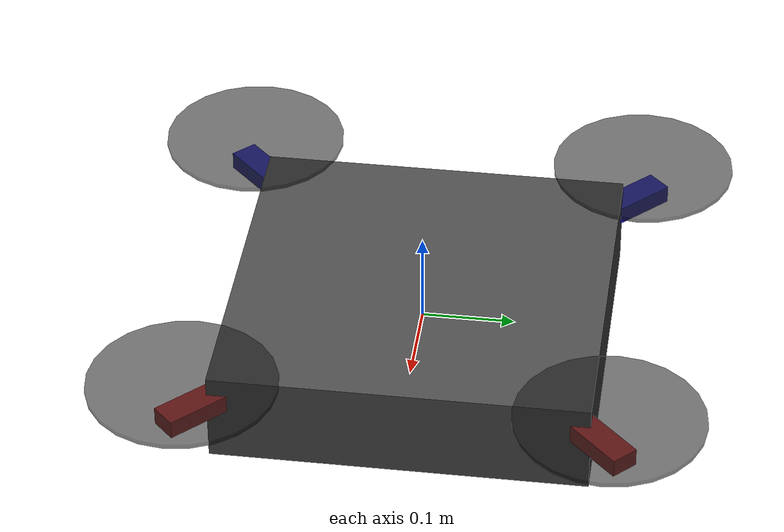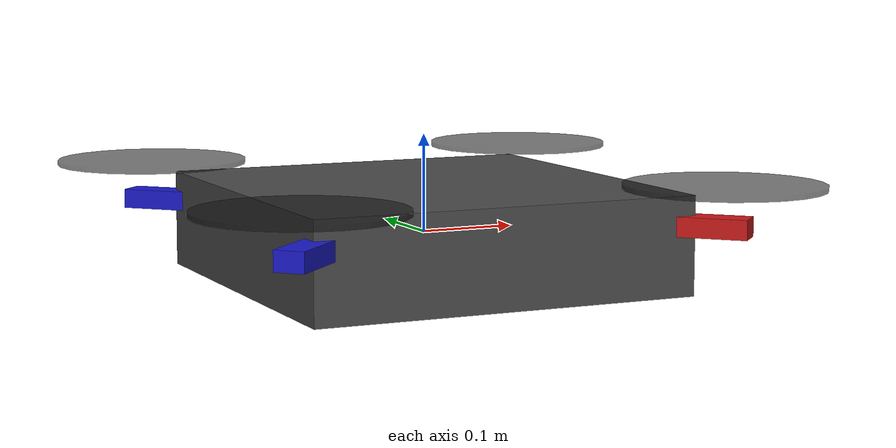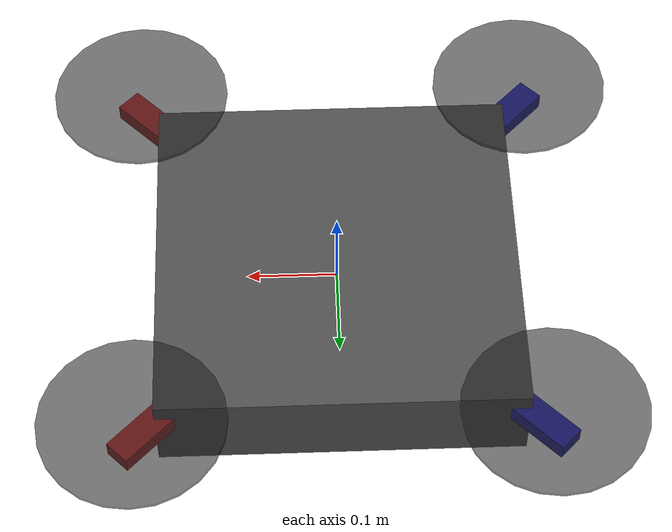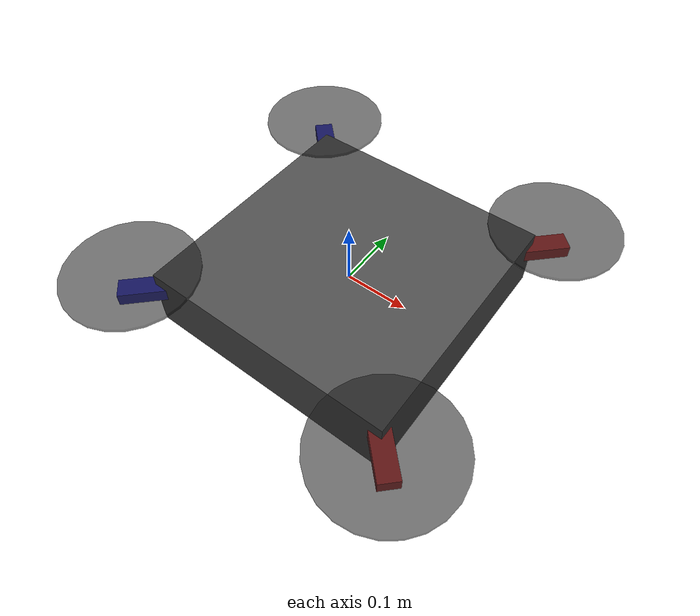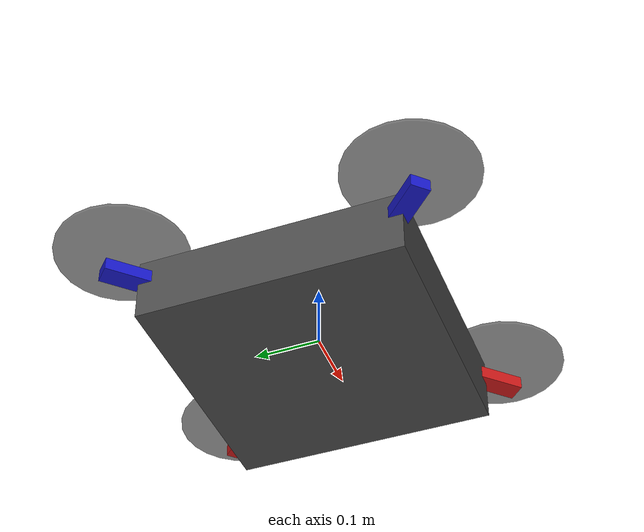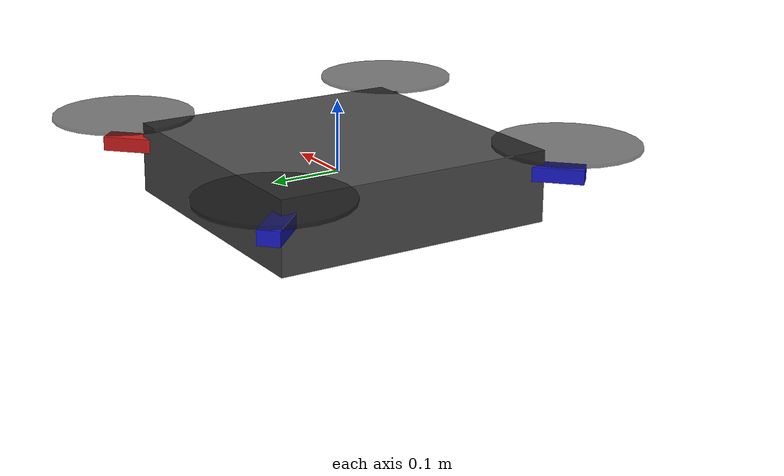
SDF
<?xml version="1.0" ?>
<sdf version="1.6">
  <model name="mars_drone">
    <static>false</static>

    <link name="base_link">
      <inertial>
        <mass>1.5</mass>
        <inertia>
          <ixx>0.029</ixx><ixy>0</ixy><ixz>0</ixz>
          <iyy>0.029</iyy><iyz>0</iyz>
          <izz>0.055</izz>
        </inertia>
      </inertial>

      <!-- Main body -->
      <collision name="body_collision">
        <geometry>
          <box><size>0.4 0.4 0.1</size></box>
        </geometry>
      </collision>
      <visual name="body_visual">
        <geometry>
          <box><size>0.4 0.4 0.1</size></box>
        </geometry>
        <material>
          <ambient>0.2 0.2 0.2 1</ambient>
          <diffuse>0.3 0.3 0.3 1</diffuse>
        </material>
      </visual>

      <!-- Front-left arm -->
      <visual name="arm_fl">
        <pose>0.15 0.15 0.02 0 0 0.785</pose>
        <geometry><box><size>0.25 0.03 0.02</size></box></geometry>
        <material><ambient>0.8 0.1 0.1 1</ambient><diffuse>0.8 0.1 0.1 1</diffuse></material>
      </visual>
      <!-- Front-right arm -->
      <visual name="arm_fr">
        <pose>0.15 -0.15 0.02 0 0 -0.785</pose>
        <geometry><box><size>0.25 0.03 0.02</size></box></geometry>
        <material><ambient>0.8 0.1 0.1 1</ambient><diffuse>0.8 0.1 0.1 1</diffuse></material>
      </visual>
      <!-- Back-left arm -->
      <visual name="arm_bl">
        <pose>-0.15 0.15 0.02 0 0 -0.785</pose>
        <geometry><box><size>0.25 0.03 0.02</size></box></geometry>
        <material><ambient>0.1 0.1 0.8 1</ambient><diffuse>0.1 0.1 0.8 1</diffuse></material>
      </visual>
      <!-- Back-right arm -->
      <visual name="arm_br">
        <pose>-0.15 -0.15 0.02 0 0 0.785</pose>
        <geometry><box><size>0.25 0.03 0.02</size></box></geometry>
        <material><ambient>0.1 0.1 0.8 1</ambient><diffuse>0.1 0.1 0.8 1</diffuse></material>
      </visual>

      <!-- Rotors (visual only) -->
      <visual name="rotor_fl">
        <pose>0.22 0.22 0.06 0 0 0</pose>
        <geometry><cylinder><radius>0.1</radius><length>0.005</length></cylinder></geometry>
        <material><ambient>0.1 0.1 0.1 0.6</ambient><diffuse>0.1 0.1 0.1 0.6</diffuse></material>
      </visual>
      <visual name="rotor_fr">
        <pose>0.22 -0.22 0.06 0 0 0</pose>
        <geometry><cylinder><radius>0.1</radius><length>0.005</length></cylinder></geometry>
        <material><ambient>0.1 0.1 0.1 0.6</ambient><diffuse>0.1 0.1 0.1 0.6</diffuse></material>
      </visual>
      <visual name="rotor_bl">
        <pose>-0.22 0.22 0.06 0 0 0</pose>
        <geometry><cylinder><radius>0.1</radius><length>0.005</length></cylinder></geometry>
        <material><ambient>0.1 0.1 0.1 0.6</ambient><diffuse>0.1 0.1 0.1 0.6</diffuse></material>
      </visual>
      <visual name="rotor_br">
        <pose>-0.22 -0.22 0.06 0 0 0</pose>
        <geometry><cylinder><radius>0.1</radius><length>0.005</length></cylinder></geometry>
        <material><ambient>0.1 0.1 0.1 0.6</ambient><diffuse>0.1 0.1 0.1 0.6</diffuse></material>
      </visual>

      <!-- Downward-facing camera -->
      <sensor name="camera" type="camera">
        <pose>0 0 -0.06 0 1.5708 0</pose>
        <always_on>true</always_on>
        <update_rate>30</update_rate>
        <camera>
          <horizontal_fov>2.0944</horizontal_fov>
          <image>
            <width>800</width>
            <height>600</height>
            <format>R8G8B8</format>
          </image>
          <clip>
            <near>0.05</near>
            <far>150</far>
          </clip>
        </camera>
        <plugin name="camera_plugin" filename="libgazebo_ros_camera.so">
          <ros>
            <namespace>drone</namespace>
            <remapping>image_raw:=camera/image_raw</remapping>
            <remapping>camera_info:=camera/camera_info</remapping>
          </ros>
          <camera_name>camera</camera_name>
          <frame_name>drone/camera_link</frame_name>
        </plugin>
      </sensor>
    </link>

    <!-- Drone velocity control plugin -->
    <plugin name="drone_plugin" filename="libdrone_plugin.so">
      <ros>
        <namespace>drone</namespace>
        <remapping>cmd_vel:=cmd_vel</remapping>
        <remapping>odom:=odom</remapping>
      </ros>
      <linear_p_gain>5.0</linear_p_gain>
      <angular_p_gain>3.0</angular_p_gain>
      <max_force>50.0</max_force>
    </plugin>
  </model>
</sdf>
